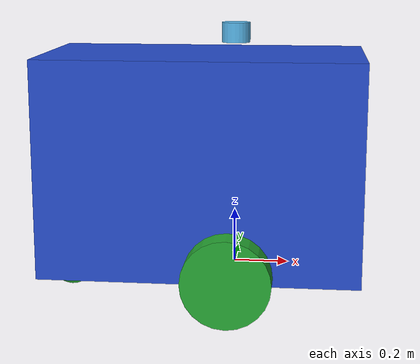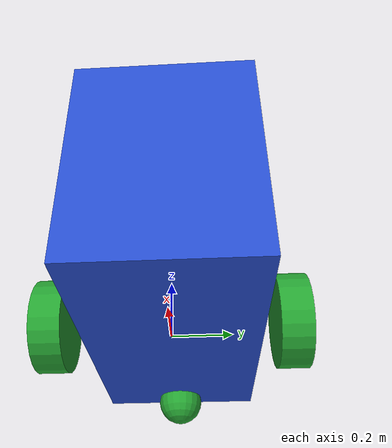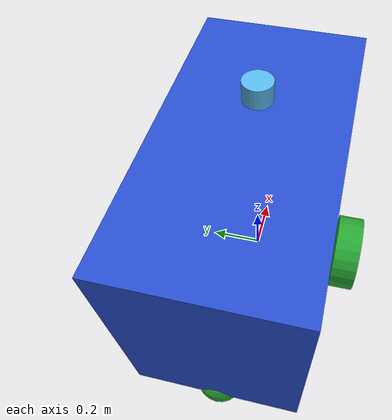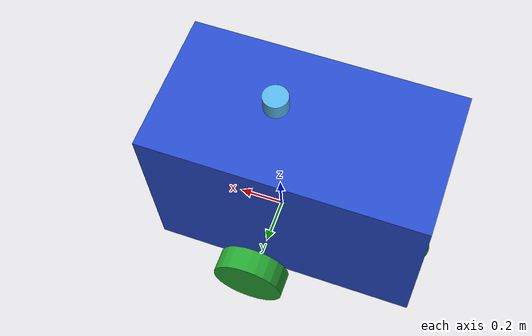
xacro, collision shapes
<?xml version='1.0'?>

<robot name="marvin" xmlns:xacro="http://www.ros.org/wiki/xacro">
    <!-- Includes -->
    <xacro:include filename="$(find mavric_launch)/urdf/constants.xacro"/>

	<!-- Base_link -->
    <link name="base_link" />

    <!-- Footprint -->
    <link name="base_footprint" />

    <joint name="base_joint" type="fixed">
        <origin xyz="0 0 ${-chassis_z_offset}" rpy="0 0 0" />
        <parent link="base_link" />
        <child link="base_footprint" />
    </joint>

    <!-- Odom -->

    <!-- Chassis -->
    <xacro:include filename="$(find mavric_launch)/urdf/chassis.xacro"/>

    <!-- Caster -->
    <xacro:include filename="$(find mavric_launch)/urdf/caster.xacro"/>
	<xacro:caster name="caster" mass="${caster_mass}" radius="${caster_radius}">
        <origin xyz="${caster_x_offset} 0 ${caster_radius-chassis_z_offset}" rpy="0 0 0" />
	</xacro:caster>

    <!-- Wheels -->
    <xacro:include filename="$(find mavric_launch)/urdf/wheel.xacro"/>
	<xacro:wheel name="right_wheel" mass="${wheel_mass}" radius="${wheel_radius}" width="${wheel_width}">
		<origin xyz="0 -${track_width / 2} ${wheel_radius-chassis_z_offset}" rpy="0 0 0" />
	</xacro:wheel>
	<xacro:wheel name="left_wheel" mass="${wheel_mass}" radius="${wheel_radius}" width="${wheel_width}">
		<origin xyz="0 ${track_width/2} ${wheel_radius-chassis_z_offset}" rpy="0 0 0" />
	</xacro:wheel>

    <!-- Camera -->
	<xacro:include filename="$(find mavric_launch)/urdf/depth_camera.xacro" />
	<xacro:depth_camera name="zed" mass="${camera_mass}" length = "${camera_length}" width="${camera_width}" height="${camera_height}" parent="base_link">
		<origin xyz="${camera_x_offset} 0 ${camera_z_offset}" rpy="0 ${camera_angle} 0" />
	</xacro:depth_camera>

    <!-- Lidar -->
    <xacro:include filename="$(find velodyne_description)/urdf/VLP-16.urdf.xacro" />
	<xacro:VLP-16 parent="base_link" name="velodyne" topic="/velodyne_points" hz="20" samples="440" gpu="true">
		<origin xyz="0 0 ${lidar_height}" rpy="0 0 0" />
	</xacro:VLP-16>

	<!-- IMU -->
    <xacro:include filename="$(find mavric_launch)/urdf/imu.xacro" />
    <xacro:imu name="imu" mass="${imu_mass}" length="${imu_length}" width="${imu_width}" height="${imu_height}">
		<origin xyz="${-chassis_tower_length / 2 - chassis_electrical_length/2} 0 ${chassis_electrical_height}" rpy="0 0 0" />
    </xacro:imu>

    <!-- Encoder -->
    <link name="encoder" />

	<joint name="encoder_joint" type="fixed">
		<origin xyz="0 0 ${wheel_radius-chassis_z_offset}" rpy="0 0 0" />
		<parent link="base_link" />
		<child link="encoder" />
		<axis xyz="0 1 0" />
	</joint>

    <!-- Gazebo plugins -->
    <xacro:include filename="$(find mavric_launch)/urdf/plugins.xacro"/>
</robot>

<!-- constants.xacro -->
<robot xmlns:xacro="http://ros.org/wiki/xacro" name="constants">
    <!-- Chassis Constants -->
    <xacro:property name="chassis_length" value="${45.5*0.0254}" />
    <xacro:property name="chassis_width" value="${24*0.0254}" />
    <xacro:property name="chassis_height" value="${22*0.0254}" />
    <xacro:property name="chassis_z_offset" value="${4.375*0.0254}" />

    <xacro:property name="chassis_tower_length" value="${8*0.0254}" />
    <xacro:property name="chassis_tower_height" value="${31*0.0254}" />

    <xacro:property name="chassis_payload_length" value="${14.25*0.0254}" />
    <xacro:property name="chassis_payload_height" value="${8*0.0254}" />

    <xacro:property name="chassis_electrical_length" value="${15.25*0.0254}" />
    <xacro:property name="chassis_electrical_height" value="${22*0.0254}" />

    <xacro:property name="chassis_caster_length" value="${8*0.0254}" />
    <xacro:property name="chassis_caster_height" value="${2.25*0.0254}" />
    <xacro:property name="chassis_caster_z_offset" value="${2*0.0254}" />

    <!-- Chassis Inertial Constants -->
    <xacro:property name="chassis_mass" value="29.9371" />
    <xacro:property name="com_x" value="${-4.0*0.0254}" />
    <xacro:property name="com_y" value="0.0" />
    <xacro:property name="com_z" value="${6.1875*0.0254-chassis_z_offset}" />

	<!-- Caster Constants -->
    <xacro:property name="caster_x_offset" value="${-24.625*0.0254}" />
    <xacro:property name="caster_radius" value="${3.5*0.0254}" />
    <xacro:property name="caster_mass" value="0.1" />

	<!-- Wheel Constants -->
    <xacro:property name="wheel_radius" value="${6.1875*0.0254}" />
    <xacro:property name="wheel_width" value="${4*0.0254}" />
    <xacro:property name="wheel_mass" value="5" />
    <xacro:property name="track_width" value="${31*0.0254}" />

    <!-- Lidar Constants -->
    <xacro:property name="lidar_height" value="${32.55*0.0254}"/>

    <!-- Camera Constants -->
    <xacro:property name="camera_mass" value="0.230"/>
    <xacro:property name="camera_length" value="0.04310"/>
    <xacro:property name="camera_width" value="0.17525"/>
    <xacro:property name="camera_height" value="0.03025"/>
    <xacro:property name="camera_angle" value="${10 * 0.01745327777}"/>
    <xacro:property name="camera_x_offset" value="${(4+2.66916)*0.0254}"/>
    <xacro:property name="camera_z_offset" value="${(31-1.80395)*0.0254}"/>

    <!-- IMU Constants -->
    <xacro:property name="imu_mass" value="0.025"/>
    <xacro:property name="imu_length" value="0.05"/>
    <xacro:property name="imu_width" value="0.03"/>
    <xacro:property name="imu_height" value="0.01"/>
</robot>

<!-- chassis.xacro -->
<robot xmlns:xacro="http://ros.org/wiki/xacro" name="chassis">
    <!-- Includes -->
    <xacro:include filename="$(find mavric_launch)/urdf/inertia.xacro"/>
    <xacro:include filename="$(find mavric_launch)/urdf/constants.xacro"/>

    <!-- Chassis link -->
    <link name="chassis_link">
        <xacro:box_inertia mass="${chassis_mass}" length="${chassis_length}" width="${chassis_width}" height="${chassis_height}">
            <origin xyz="${com_x} ${com_y} ${com_z}" rpy="0 0 0" />
		</xacro:box_inertia>

		<visual> <!-- Chassis Tower -->
			<origin xyz="0 0 ${chassis_tower_height / 2}" rpy="0 0 0" />
			<geometry>
				<box size="${chassis_tower_length} ${chassis_width} ${chassis_tower_height}" />
			</geometry>
		</visual>

        <visual> <!-- Chassis Payload -->
            <origin xyz="${chassis_tower_length / 2 + chassis_payload_length / 2} 0 ${chassis_payload_height / 2}" rpy="0 0 0" />
            <geometry>
                <box size="${chassis_payload_length} ${chassis_width} ${chassis_payload_height}" />
            </geometry>
        </visual>

        <visual> <!-- Chassis Electrical -->
            <origin xyz="${-chassis_tower_length / 2 - chassis_electrical_length / 2} 0 ${chassis_electrical_height / 2}" rpy="0 0 0" />
            <geometry>
                <box size="${chassis_electrical_length} ${chassis_width} ${chassis_electrical_height}" />
            </geometry>
        </visual>

        <visual> <!-- Chassis Caster -->
            <origin xyz="${-chassis_tower_length / 2 - chassis_electrical_length - chassis_caster_length / 2}
                         0
                         ${chassis_caster_height / 2 + chassis_caster_z_offset}"
                         rpy="0 0 0" />
            <geometry>
                <box size="${chassis_caster_length} ${chassis_width} ${chassis_caster_height}" />
            </geometry>
        </visual>

		<collision>
			<origin xyz="${chassis_tower_length / 2 + chassis_payload_length - chassis_length / 2}
                         0
                         ${chassis_tower_height / 2}"
                    rpy="0 0 0" />
			<geometry>
				<box size="${chassis_length} ${chassis_width} ${chassis_tower_height}" />
			</geometry>
		</collision>
	</link>

    <joint name="chassis_joint" type="fixed">
		<origin xyz="0 0 0" rpy="0 0 0" />
        <parent link="base_link" />
        <child link="chassis_link" />
    </joint>

    <!-- Chassis color -->
    <gazebo reference="chassis_link">
        <material>Gazebo/Blue</material>
    </gazebo>
</robot>

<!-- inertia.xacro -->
<robot xmlns:xacro="http://ros.org/wiki/xacro" name="inertia">
    <!-- Brief: Inertial property of a constant density box -->
    <!-- Param mass: mass of the link -->
    <!-- Param length: length of the link -->
    <!-- Param width: width of the link -->
    <!-- Param height: height of the object -->
    <!-- Param origin: location of the inertia relative to the link's origin -->
    <xacro:macro name="box_inertia" params="mass length width height *origin">
            <inertial>
            <xacro:insert_block name="origin" />
            <mass value="${mass}"/>
            <inertia ixx="${(mass/12) * (height**2 + width**2)}" ixy="0.0" ixz="0.0"
                    iyy="${(mass/12) * (height**2 + length**2)}" iyz="0.0"
                    izz="${(mass/12) * (length**2 + width**2)}"/>
            </inertial>
    </xacro:macro>

    <!-- Brief: Inertial property of a constant density cylinder -->
    <!-- Param mass: mass of the link -->
    <!-- Param radius: radius of the link -->
    <!-- Param height: height of the link -->
    <!-- Param origin: location of the inertia relative to the link's origin -->
    <xacro:macro name="cylinder_inertia" params="mass radius height *origin">
        <inertial>
            <xacro:insert_block name="origin" />
            <mass value="${mass}"/>
            <inertia ixx="${(mass/12) * (3*radius**2 + height**2)}" ixy = "0" ixz = "0"
                    iyy="${(mass/2) * (radius**2)}" iyz = "0"
                    izz="${(mass/12) * (3*radius**2 + height**2)}"/>
        </inertial>
    </xacro:macro>

    <!-- Brief: Inertial property of a constant density sphere -->
    <!-- Param mass: mass of the link -->
    <!-- Param radius: radius of the link -->
    <!-- Param origin: location of the inertia relative to the link's origin -->
    <xacro:macro name="sphere_inertia" params="mass radius *origin">
        <inertial>
            <xacro:insert_block name="origin" />
            <mass value="${mass}"/>
            <inertia ixx="${(2/5) * mass * radius**2}" ixy="0.0" ixz="0.0"
                    iyy="${(2/5) * mass * radius**2}" iyz="0.0"
                    izz="${(2/5) * mass * radius**2}"/>
        </inertial>
    </xacro:macro>
</robot>

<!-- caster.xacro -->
<!-- Brief: A caster wheel with zero friction -->
<!-- Shape, Collision, Inertia: Sphere with relevant collision and constant inertia -->
<!-- Mounting Location: center of the sphere -->
<!-- Joint Type: fixed -->
<!-- Param name: the name of the caster -->
<!-- Param mass: mass of the caster -->
<!-- Param radius: radius of the caster -->
<!-- Param parent: name of the parent link, defaulted to base_link -->
<!-- Param joint_origin: location of the caster relative to parent link -->
<robot xmlns:xacro="http://ros.org/wiki/xacro" name="caster">
    <xacro:macro name="caster" params="name mass radius parent:=base_link *joint_origin">
        <!-- Includes -->
        <xacro:include filename="$(find mavric_launch)/urdf/inertia.xacro"/>

        <!-- Caster link -->
        <link name="${name}_link">
            <xacro:sphere_inertia mass="${mass}" radius="${radius}">
                <origin xyz="0 0 0" rpy="0 0 0" />
            </xacro:sphere_inertia>

            <visual>
                <geometry>
                    <sphere radius="${radius}" />
                </geometry>
            </visual>

            <collision>
                <origin xyz="0 0 0" rpy=" 0 0 0"/>
                <geometry>
                    <sphere radius="${radius}"/>
                </geometry>
                <surface>
                    <friction>
                        <ode>
                            <mu>0.0</mu>
                            <mu2>0.0</mu2>
                        </ode>
                    </friction>
                </surface>
            </collision>
        </link>

        <joint name="${name}_joint" type="fixed">
            <xacro:insert_block name="joint_origin" />
            <parent link="${parent}" />
            <child link="${name}_link" />
        </joint>

        <!-- Caster color -->
        <gazebo reference="${name}_link">
		    <material>Gazebo/Green</material>
	    </gazebo>
    </xacro:macro>
</robot>

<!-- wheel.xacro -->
<!-- Brief: Powered robot wheel -->
<!-- Shape, Collision, Inertia: Cylinder with relevant collision and constant inertia -->
<!-- Mounting Location: Center of cylinder -->
<!-- Joint Type: continuous -->
<!-- Param name: the name of the wheel -->
<!-- Param mass: mass of the wheel -->
<!-- Param radius: radius of the wheel -->
<!-- Param width: width of the wheel -->
<!-- Param parent: name of the parent link, defaulted to base_link -->
<!-- Param joint_origin: location of the wheel relative to parent link -->
<robot xmlns:xacro="http://ros.org/wiki/xacro" name="wheel">
    <xacro:macro name="wheel" params="name mass radius width parent:=base_link *joint_origin">
        <!-- Includes -->
        <xacro:include filename="$(find mavric_launch)/urdf/inertia.xacro"/>

        <!-- Wheel link -->
        <link name="${name}_link">
            <xacro:cylinder_inertia mass="${mass}" radius="${radius}" height="${width}">
                <origin xyz="0 0 0" rpy="0 0 0" />
            </xacro:cylinder_inertia>

            <visual>
                <origin xyz="0 0 0" rpy="0 ${pi/2} ${pi/2}" />
                <geometry>
                    <cylinder radius="${radius}" length="${width}" />
                </geometry>
            </visual>

            <collision>
                <origin xyz="0 0 0" rpy="0 ${pi/2} ${pi/2}" />

                <geometry>
                    <cylinder radius="${radius}" length="${width}" />
                </geometry>
            </collision>
        </link>

        <joint type="continuous" name="${name}_joint">
            <xacro:insert_block name="joint_origin" />
            <parent link="base_link" />
            <child link="${name}_link" />
            <axis xyz="0 1 0" rpy="0 0 0" />
            <limit effort="1000" velocity="1000"/>
            <dynamics damping="0.0001"/>
        </joint>

        <!-- Wheel color & physics-->
        <gazebo reference="${name}_link">
            <material>Gazebo/Green</material>
            <mu1 value="1.0"/>
            <mu2 value="1.0"/>
            <kp value="10000000.0" />
            <kd value="1.0" />
            <maxVel>1.0</maxVel>
            <minDepth>0.00</minDepth>
        </gazebo>
    </xacro:macro>
</robot>

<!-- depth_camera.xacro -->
<!-- Brief: Depth camera with property mimicking to the ZED 2i camera -->
<!-- Shape, Collision, Inertia: Box with relevant collision and constant inertia -->
<!-- Mounting Location: Bottom center of the camera -->
<!-- Joint Type: fixed -->
<!-- Plugin: libgazebo_ros_camera.so (depth camera) -->
<!-- Param name: the name of the depth camera. All published topics will start with /{name} -->
<!-- Param mass: mass of the depth camera -->
<!-- Param length: length of the depth camera -->
<!-- Param width: width of the depth camera -->
<!-- Param height: height of the depth camera -->
<!-- Param parent: name of the parent link, defaulted to base_link -->
<!-- Param joint_origin: location of the depth camera relative to parent link -->
<robot xmlns:xacro="http://ros.org/wiki/xacro" name="depth_camera">
    <xacro:macro name="depth_camera" params="name mass length width height parent:=base_link *joint_origin">
        <!-- Includes -->
        <xacro:include filename="$(find mavric_launch)/urdf/inertia.xacro"/>

        <!-- Depth camera base link -->
        <link name="${name}_base_link" />

        <joint name="${name}_base_joint" type="fixed">
            <xacro:insert_block name="joint_origin" />
            <parent link="${parent}" />
            <child link="${name}_base_link" />
            <axis xyz="0 1 0" />
        </joint>

        <!-- Depth camera link -->
        <link name="${name}_link">
            <xacro:box_inertia mass="${mass}" length="${length}" width="${width}" height="${height}">
                <origin xyz="0 0 0" rpy="0 0 0" />
            </xacro:box_inertia>

            <visual>
                <origin xyz="0 0 0" rpy="0 0 0"/>
                <geometry>
                    <box size="${length} ${width} ${height}"/>
                </geometry>
            </visual>

            <collision>
                <origin xyz="0 0 0" rpy="0 0 0"/>
                <geometry>
                    <box size="${length} ${width} ${height}"/>
                </geometry>
            </collision>
        </link>

        <joint name="${name}_joint" type="fixed">
            <origin xyz="0 0 ${height/2}" rpy="0 0 0"/>
            <parent link="${name}_base_link" />
            <child link="${name}_link" />
        </joint>

        <!-- Depth camera optical link -->
        <link name="${name}_optical_link" />

        <joint name="${name}_optical_joint" type="fixed">
            <origin xyz="0 0 0" rpy="${-pi/2} 0 ${-pi/2}"/>
            <parent link="${name}_link" />
            <child link="${name}_optical_link" />
        </joint>

        <!-- Depth camera color -->
        <gazebo reference="${name}_link">
            <material>Gazebo/Black</material>
        </gazebo>

        <!-- Depth camera plugin -->
        <gazebo reference="${name}_link">
            <sensor name="${name}" type="depth">
                <update_rate>15.0</update_rate>
                <visualize>true</visualize>
                <always_on>true</always_on>

                <camera>
                    <horizontal_fov>1.91986</horizontal_fov>
                    <image>
                        <width>2560</width>
                        <height>720</height>
                        <format>B8G8R8</format>
                    </image>
                    <clip>
                        <near>0.3</near>
                        <far>20</far>
                    </clip>
                </camera>

                <plugin name="${name}_controller" filename="libgazebo_ros_camera.so">
                    <frame_name>${name}_optical_link</frame_name>
                    <min_depth>0</min_depth>
                    <max_depth>100</max_depth>
                </plugin>
            </sensor>
        </gazebo>
    </xacro:macro>
</robot>

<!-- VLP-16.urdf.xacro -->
<robot xmlns:xacro="http://www.ros.org/wiki/xacro" name="VLP-16">
  <xacro:property name="M_PI" value="3.1415926535897931" />
  <xacro:macro name="VLP-16" params="*origin is_sim:=true parent:=base_link name:=velodyne tf_prefix:='' topic:=/velodyne_points organize_cloud:=false hz:=10 lasers:=16 samples:=1875 collision_range:=0.3 min_range:=0.0 max_range:=100.0 noise:=0.008 min_angle:=-${M_PI} max_angle:=${M_PI} gpu:=false">

    <joint name="${name}_base_mount_joint" type="fixed">
      <xacro:insert_block name="origin" />
      <parent link="${parent}"/>
      <child link="${name}_base_link"/>
    </joint>

    <link name="${name}_base_link">
      <inertial>
        <mass value="0.83"/>
        <origin xyz="0 0 0.03585"/>
        <inertia ixx="${(0.83 * (3.0*0.0516*0.0516 + 0.0717*0.0717)) / 12.0}" ixy="0" ixz="0"
          iyy="${(0.83 * (3.0*0.0516*0.0516 + 0.0717*0.0717)) / 12.0}" iyz="0"
          izz="${0.5 * 0.83 * (0.0516*0.0516)}"/>
      </inertial>
      <visual>
        <geometry>
          <mesh filename="package://velodyne_description/meshes/VLP16_base_1.dae" />
        </geometry>
      </visual>
      <visual>
        <geometry>
          <mesh filename="package://velodyne_description/meshes/VLP16_base_2.dae" />
        </geometry>
      </visual>
      <collision>
        <origin rpy="0 0 0" xyz="0 0 0.03585"/>
        <geometry>
          <cylinder radius="0.0516" length="0.0717"/>
        </geometry>
      </collision>
    </link>

    <joint name="${name}_base_scan_joint" type="fixed" >
      <origin xyz="0 0 0.0377" rpy="0 0 0" />
      <parent link="${name}_base_link" />
      <child link="${name}"/>
    </joint>

    <link name="${name}">
      <inertial>
        <mass value="0.01"/>
        <origin xyz="0 0 0"/>
        <inertia ixx="1e-7" ixy="0" ixz="0" iyy="1e-7" iyz="0" izz="1e-7"/>
      </inertial>
      <visual>
        <origin xyz="0 0 -0.0377" />
        <geometry>
          <mesh filename="package://velodyne_description/meshes/VLP16_scan.dae" />
        </geometry>
      </visual>
      <collision>
        <geometry>
          <sphere radius="0"/>
        </geometry>
      </collision>
    </link>

    <!-- Gazebo requires the velodyne_gazebo_plugins package -->
    <xacro:if value="${is_sim}">
        <gazebo reference="${name}">
            <xacro:if value="${gpu}">
                <sensor type="gpu_ray" name="${name}-VLP16">
                <pose>0 0 0 0 0 0</pose>
                <visualize>false</visualize>
                <update_rate>${hz}</update_rate>
                <ray>
                    <scan>
                    <horizontal>
                        <samples>${samples}</samples>
                        <resolution>1</resolution>
                        <min_angle>${min_angle}</min_angle>
                        <max_angle>${max_angle}</max_angle>
                    </horizontal>
                    <vertical>
                        <samples>${lasers}</samples>
                        <resolution>1</resolution>
                        <min_angle>-${15.0*M_PI/180.0}</min_angle>
                        <max_angle> ${15.0*M_PI/180.0}</max_angle>
                    </vertical>
                    </scan>
                    <range>
                    <min>${collision_range}</min>
                    <max>${max_range+1}</max>
                    <resolution>0.001</resolution>
                    </range>
                    <noise>
                    <type>gaussian</type>
                    <mean>0.0</mean>
                    <stddev>0.0</stddev>
                    </noise>
                </ray>
                <plugin name="gazebo_ros_laser_controller" filename="libgazebo_ros_velodyne_laser.so">
                    <ros>
                    <namespace>/${name}</namespace>
                    <remapping>~/out:=${topic}</remapping>
                    </ros>
                    <tf_prefix>${tf_prefix}</tf_prefix>
                    <frame_name>${name}</frame_name>
                    <organize_cloud>${organize_cloud}</organize_cloud>
                    <min_range>${min_range}</min_range>
                    <max_range>${max_range}</max_range>
                    <gaussian_noise>${noise}</gaussian_noise>
                </plugin>
                </sensor>
            </xacro:if>
            <xacro:unless value="${gpu}">
                <sensor type="ray" name="${name}-VLP16">
                <pose>0 0 0 0 0 0</pose>
                <visualize>false</visualize>
                <update_rate>${hz}</update_rate>
                <ray>
                    <scan>
                    <horizontal>
                        <samples>${samples}</samples>
                        <resolution>1</resolution>
                        <min_angle>${min_angle}</min_angle>
                        <max_angle>${max_angle}</max_angle>
                    </horizontal>
                    <vertical>
                        <samples>${lasers}</samples>
                        <resolution>1</resolution>
                        <min_angle>-${15.0*M_PI/180.0}</min_angle>
                        <max_angle> ${15.0*M_PI/180.0}</max_angle>
                    </vertical>
                    </scan>
                    <range>
                    <min>${collision_range}</min>
                    <max>${max_range+1}</max>
                    <resolution>0.001</resolution>
                    </range>
                    <noise>
                    <type>gaussian</type>
                    <mean>0.0</mean>
                    <stddev>0.0</stddev>
                    </noise>
                </ray>
                <plugin name="gazebo_ros_laser_controller" filename="libgazebo_ros_velodyne_laser.so">
                    <ros>
                    <namespace>/${name}</namespace>
                    <remapping>~/out:=${topic}</remapping>
                    </ros>
                    <tf_prefix>${tf_prefix}</tf_prefix>
                    <frame_name>${name}</frame_name>
                    <organize_cloud>${organize_cloud}</organize_cloud>
                    <min_range>${min_range}</min_range>
                    <max_range>${max_range}</max_range>
                    <gaussian_noise>${noise}</gaussian_noise>
                </plugin>
                </sensor>
            </xacro:unless>
        </gazebo>
    </xacro:if>

  </xacro:macro>
</robot>

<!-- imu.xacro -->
<!-- Brief: Standard IMU -->
<!-- Shape, Collision, Inertia: Box with relevant collision and constant inertia -->
<!-- Mounting Location: Bottom center of the IMU -->
<!-- Joint Type: fixed -->
<!-- Plugin: libgazebo_ros_imu_sensor.so -->
<!-- Param name: the name of the IMU. Published topic is /{name}_controller/out -->
<!-- Param mass: mass of the IMU -->
<!-- Param length: length of the IMU -->
<!-- Param width: width of the IMU -->
<!-- Param height: height of the IMU -->
<!-- Param parent: name of the parent link, defaulted to base_link -->
<!-- Param joint_origin: location of the IMU relative to parent link -->
<robot xmlns:xacro="http://ros.org/wiki/xacro" name="caster">
    <xacro:macro name="imu" params="name mass length width height parent:=base_link *joint_origin">
        <!-- Includes -->
        <xacro:include filename="$(find mavric_launch)/urdf/inertia.xacro"/>

        <!-- Imu base link -->
        <link name="${name}_base_link" />

        <joint name="${name}_base_joint" type="fixed">
            <xacro:insert_block name="joint_origin" />
            <parent link="${parent}" />
            <child link="${name}_base_link" />
            <axis xyz="0 1 0" />
        </joint>

        <!-- Imu link -->
        <link name="${name}_link">
		    <xacro:box_inertia mass="${mass}" length="${length}" width="${width}" height="${height}">
                <origin xyz="0 0 0" rpy="0 0 0" />
            </xacro:box_inertia>

            <visual>
                <origin xyz="0 0 0" rpy="0 0 0"/>
                <geometry>
                    <box size="${length} ${width} ${height}"/>
                </geometry>
            </visual>

            <collision>
                <origin xyz="0 0 0" rpy="0 0 0"/>
                <geometry>
                    <box size="${length} ${width} ${height}"/>
                </geometry>
            </collision>
        </link>

        <joint name="${name}_joint" type="fixed">
            <origin xyz="0 0 ${height/2}" rpy="0 0 0"/>
            <parent link="${name}_base_link" />
            <child link="${name}_link" />
        </joint>

        <!-- Imu color -->
        <gazebo reference="${name}_link">
            <material>Gazebo/Purple</material>
        </gazebo>

        <!-- Imu plugin -->
        <gazebo reference="${name}_link">
            <gravity>true</gravity>

            <sensor name="${name}" type="imu">
                <always_on>true</always_on>
                <update_rate>100.0</update_rate>
                <visualize>true</visualize>
                <topic>__default_topic__</topic>
                <pose>0 0 0 0 0 0</pose>

                <plugin name="${name}_controller" filename="libgazebo_ros_imu_sensor.so">
                    <topicName>imu</topicName>
                    <bodyName>${name}_link</bodyName>
                    <updateRateHZ>100.0</updateRateHZ>
                    <gaussianNoise>0.0</gaussianNoise>
                    <xyzOffset>0 0 0</xyzOffset>
                    <rpyOffset>0 0 0</rpyOffset>
                    <frameName>${name}_link</frameName>
                    <initialOrientationAsReference>false</initialOrientationAsReference>
                </plugin>
            </sensor>
        </gazebo>
    </xacro:macro>
</robot>
